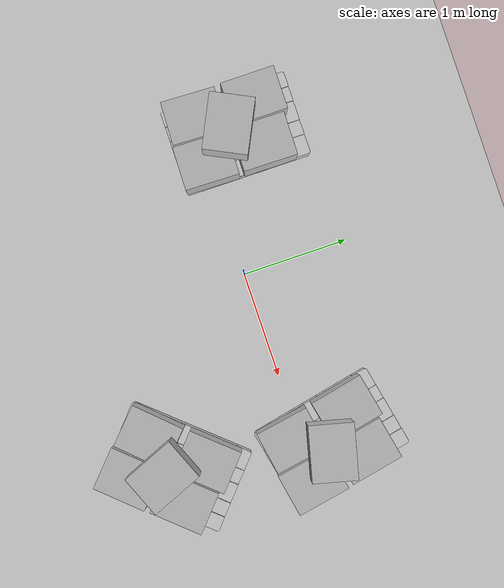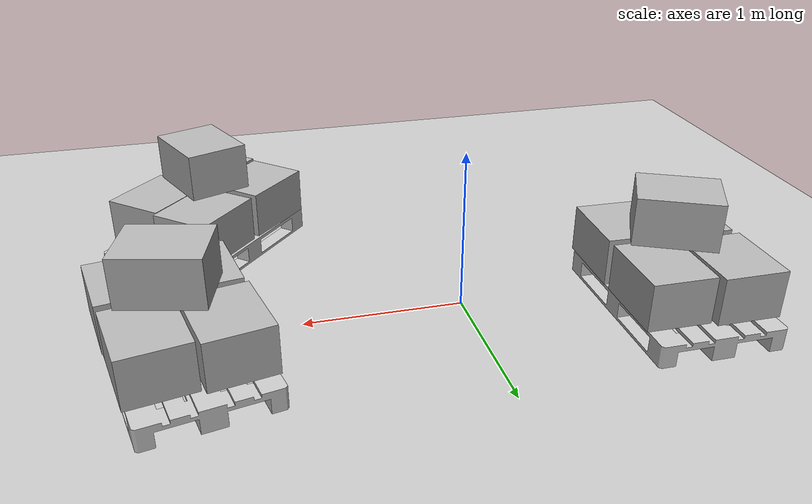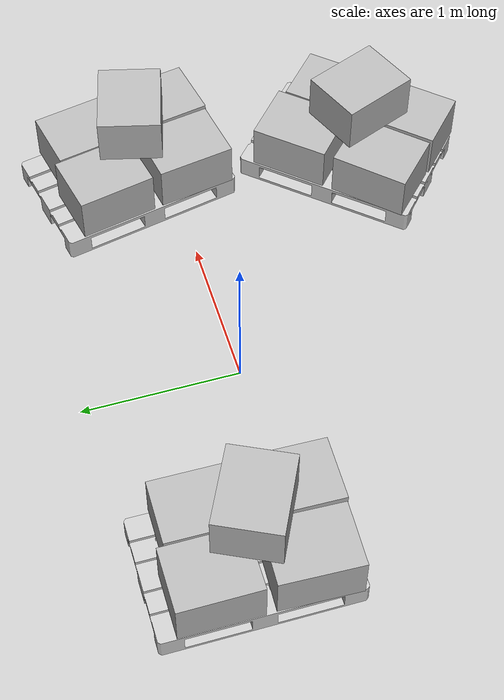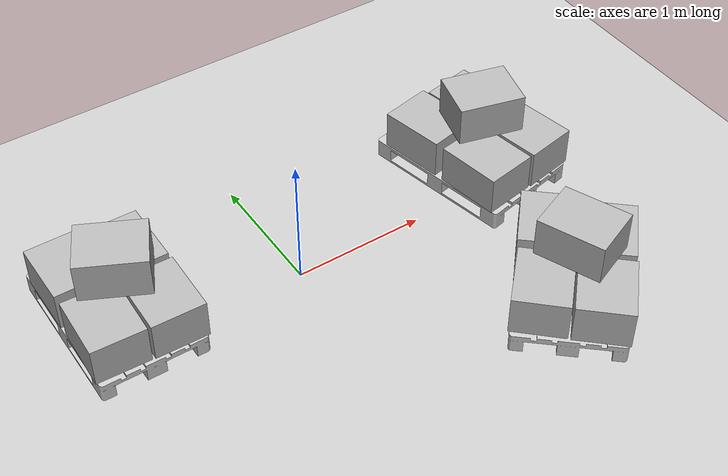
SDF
<sdf version="1.7">
 <world name="default">
  <light name="sun" type="directional">
   <pose>0 0 10 0 -0 0</pose>
   <diffuse>0.8 0.8 0.8 1</diffuse>
   <specular>0.2 0.2 0.2 1</specular>
   <attenuation>
    <range>1000</range>
    <constant>0.9</constant>
    <linear>0.01</linear>
    <quadratic>0.001</quadratic>
   </attenuation>
   <direction>-0.5 0.1 -0.9</direction>
   <spot><inner_angle>0</inner_angle><outer_angle>0</outer_angle><falloff>0</falloff></spot>
  </light>
  <model name="ground_plane">
   <static>1</static>
   <link name="link">
    <collision name="collision">
     <geometry><plane><normal>0 0 1</normal><size>100 100</size></plane></geometry>
     <surface><friction><ode><mu>100</mu><mu2>50</mu2></ode></friction></surface>
    </collision>
    <visual name="visual">
     <cast_shadows>0</cast_shadows>
     <geometry><plane><normal>0 0 1</normal><size>100 100</size></plane></geometry>
     <material>
      <script><uri>file://media/materials/scripts/gazebo.material</uri><name>Gazebo/Grey</name></script>
     </material>
    </visual>
   </link>
  </model>
  <gravity>0 0 -9.8</gravity>
  <magnetic_field>6e-06 2.3e-05 -4.2e-05</magnetic_field>
  <atmosphere type="adiabatic"/>
  <physics type="ode">
   <max_step_size>0.001</max_step_size>
   <real_time_factor>1</real_time_factor>
   <real_time_update_rate>1000</real_time_update_rate>
  </physics>
  <scene><ambient>0.4 0.4 0.4 1</ambient><background>0.7 0.7 0.7 1</background><shadows>1</shadows></scene>
  <audio><device>default</device></audio>
  <spherical_coordinates>
   <surface_model>EARTH_WGS84</surface_model>
   <latitude_deg>0</latitude_deg>
   <longitude_deg>0</longitude_deg>
   <elevation>0</elevation>
   <heading_deg>0</heading_deg>
  </spherical_coordinates>
  <model name="pallet_boxes">
   <model name="cardboard_box">
    <pose>-0.341081 -0.057246 -0.01872 0 -0 0.780735</pose>
    <link name="link">
     <inertial>
      <mass>2</mass>
      <inertia>
       <ixx>0.0416667</ixx>
       <ixy>0</ixy>
       <ixz>0</ixz>
       <iyy>0.0566667</iyy>
       <iyz>0</iyz>
       <izz>0.0683333</izz>
      </inertia>
     </inertial>
     <collision name="collision">
      <geometry><box><size>0.5 0.4 0.3</size></box></geometry>
      <surface>
       <friction><ode><mu>1</mu><mu2>1</mu2></ode></friction>
       <contact><ode><kp>1e+07</kp><kd>1</kd><min_depth>0.001</min_depth><max_vel>0.1</max_vel></ode></contact>
      </surface>
     </collision>
     <visual name="visual">
      <pose>0 0 -0.15 0 -0 0</pose>
      <geometry>
       <mesh><uri>model://cardboard_box/meshes/cardboard_box.dae</uri><scale>1.25932 1.00745 0.755591</scale></mesh>
      </geometry>
     </visual>
    </link>
   </model>
   <model name="cardboard_box_0">
    <pose>-0.055004 -0.357232 -0.01132 0 -0 0.796319</pose>
    <link name="link">
     <inertial>
      <mass>2</mass>
      <inertia>
       <ixx>0.0416667</ixx>
       <ixy>0</ixy>
       <ixz>0</ixz>
       <iyy>0.0566667</iyy>
       <iyz>0</iyz>
       <izz>0.0683333</izz>
      </inertia>
     </inertial>
     <collision name="collision">
      <geometry><box><size>0.5 0.4 0.3</size></box></geometry>
      <surface>
       <friction><ode><mu>1</mu><mu2>1</mu2></ode></friction>
       <contact><ode><kp>1e+07</kp><kd>1</kd><min_depth>0.001</min_depth><max_vel>0.1</max_vel></ode></contact>
      </surface>
     </collision>
     <visual name="visual">
      <pose>0 0 -0.15 0 -0 0</pose>
      <geometry>
       <mesh><uri>model://cardboard_box/meshes/cardboard_box.dae</uri><scale>1.25932 1.00745 0.755591</scale></mesh>
      </geometry>
     </visual>
    </link>
   </model>
   <model name="cardboard_box_1">
    <pose>0.001117 -0.020552 0.305228 0 0 -1.2094</pose>
    <link name="link">
     <inertial>
      <mass>2</mass>
      <inertia>
       <ixx>0.0416667</ixx>
       <ixy>0</ixy>
       <ixz>0</ixz>
       <iyy>0.0566667</iyy>
       <iyz>0</iyz>
       <izz>0.0683333</izz>
      </inertia>
     </inertial>
     <collision name="collision">
      <geometry><box><size>0.5 0.4 0.3</size></box></geometry>
      <surface>
       <friction><ode><mu>1</mu><mu2>1</mu2></ode></friction>
       <contact><ode><kp>1e+07</kp><kd>1</kd><min_depth>0.001</min_depth><max_vel>0.1</max_vel></ode></contact>
      </surface>
     </collision>
     <visual name="visual">
      <pose>0 0 -0.15 0 -0 0</pose>
      <geometry>
       <mesh><uri>model://cardboard_box/meshes/cardboard_box.dae</uri><scale>1.25932 1.00745 0.755591</scale></mesh>
      </geometry>
     </visual>
    </link>
   </model>
   <model name="cardboard_box_2">
    <pose>0.048438 0.355981 -0.009967 0 -0 0.817843</pose>
    <link name="link">
     <inertial>
      <mass>2</mass>
      <inertia>
       <ixx>0.0416667</ixx>
       <ixy>0</ixy>
       <ixz>0</ixz>
       <iyy>0.0566667</iyy>
       <iyz>0</iyz>
       <izz>0.0683333</izz>
      </inertia>
     </inertial>
     <collision name="collision">
      <geometry><box><size>0.5 0.4 0.3</size></box></geometry>
      <surface>
       <friction><ode><mu>1</mu><mu2>1</mu2></ode></friction>
       <contact><ode><kp>1e+07</kp><kd>1</kd><min_depth>0.001</min_depth><max_vel>0.1</max_vel></ode></contact>
      </surface>
     </collision>
     <visual name="visual">
      <pose>0 0 -0.15 0 -0 0</pose>
      <geometry>
       <mesh><uri>model://cardboard_box/meshes/cardboard_box.dae</uri><scale>1.25932 1.00745 0.755591</scale></mesh>
      </geometry>
     </visual>
    </link>
   </model>
   <model name="cardboard_box_3">
    <pose>0.320107 0.039904 -0.015884 0 -0 0.808908</pose>
    <link name="link">
     <inertial>
      <mass>2</mass>
      <inertia>
       <ixx>0.0416667</ixx>
       <ixy>0</ixy>
       <ixz>0</ixz>
       <iyy>0.0566667</iyy>
       <iyz>0</iyz>
       <izz>0.0683333</izz>
      </inertia>
     </inertial>
     <collision name="collision">
      <geometry><box><size>0.5 0.4 0.3</size></box></geometry>
      <surface>
       <friction><ode><mu>1</mu><mu2>1</mu2></ode></friction>
       <contact><ode><kp>1e+07</kp><kd>1</kd><min_depth>0.001</min_depth><max_vel>0.1</max_vel></ode></contact>
      </surface>
     </collision>
     <visual name="visual">
      <pose>0 0 -0.15 0 -0 0</pose>
      <geometry>
       <mesh><uri>model://cardboard_box/meshes/cardboard_box.dae</uri><scale>1.25932 1.00745 0.755591</scale></mesh>
      </geometry>
     </visual>
    </link>
   </model>
   <model name="euro_pallet">
    <link name="link">
     <inertial>
      <mass>20</mass>
      <inertia><ixx>2.43</ixx><ixy>0</ixy><ixz>0</ixz><iyy>1.1</iyy><iyz>0</iyz><izz>3.47</izz></inertia>
     </inertial>
     <collision name="collision">
      <pose>0 0 0.05 0 -0 0</pose>
      <geometry><mesh><uri>model://euro_pallet/meshes/pallet.dae</uri><scale>0.1 0.1 0.1</scale></mesh></geometry>
     </collision>
     <visual name="visual">
      <pose>0 0 0.05 0 -0 0</pose>
      <geometry><mesh><uri>model://euro_pallet/meshes/pallet.dae</uri><scale>0.1 0.1 0.1</scale></mesh></geometry>
     </visual>
    </link>
    <pose>0.026431 0.039136 -0.249336 0 0 -0.754659</pose>
   </model>
   <static>0</static>
   <pose>1.45945 -1.21502 0.312718 7e-06 5e-06 0.028383</pose>
  </model>
  <model name="pallet_boxes_0">
   <model name="cardboard_box">
    <pose>-0.341081 -0.057246 -0.01872 0 -0 0.780735</pose>
    <link name="link">
     <inertial>
      <mass>2</mass>
      <inertia>
       <ixx>0.0416667</ixx>
       <ixy>0</ixy>
       <ixz>0</ixz>
       <iyy>0.0566667</iyy>
       <iyz>0</iyz>
       <izz>0.0683333</izz>
      </inertia>
     </inertial>
     <collision name="collision">
      <geometry><box><size>0.5 0.4 0.3</size></box></geometry>
      <surface>
       <friction><ode><mu>1</mu><mu2>1</mu2></ode></friction>
       <contact><ode><kp>1e+07</kp><kd>1</kd><min_depth>0.001</min_depth><max_vel>0.1</max_vel></ode></contact>
      </surface>
     </collision>
     <visual name="visual">
      <pose>0 0 -0.15 0 -0 0</pose>
      <geometry>
       <mesh><uri>model://cardboard_box/meshes/cardboard_box.dae</uri><scale>1.25932 1.00745 0.755591</scale></mesh>
      </geometry>
     </visual>
    </link>
   </model>
   <model name="cardboard_box_0">
    <pose>-0.055004 -0.357232 -0.01132 0 -0 0.796319</pose>
    <link name="link">
     <inertial>
      <mass>2</mass>
      <inertia>
       <ixx>0.0416667</ixx>
       <ixy>0</ixy>
       <ixz>0</ixz>
       <iyy>0.0566667</iyy>
       <iyz>0</iyz>
       <izz>0.0683333</izz>
      </inertia>
     </inertial>
     <collision name="collision">
      <geometry><box><size>0.5 0.4 0.3</size></box></geometry>
      <surface>
       <friction><ode><mu>1</mu><mu2>1</mu2></ode></friction>
       <contact><ode><kp>1e+07</kp><kd>1</kd><min_depth>0.001</min_depth><max_vel>0.1</max_vel></ode></contact>
      </surface>
     </collision>
     <visual name="visual">
      <pose>0 0 -0.15 0 -0 0</pose>
      <geometry>
       <mesh><uri>model://cardboard_box/meshes/cardboard_box.dae</uri><scale>1.25932 1.00745 0.755591</scale></mesh>
      </geometry>
     </visual>
    </link>
   </model>
   <model name="cardboard_box_1">
    <pose>0.001117 -0.020552 0.305228 0 0 -1.2094</pose>
    <link name="link">
     <inertial>
      <mass>2</mass>
      <inertia>
       <ixx>0.0416667</ixx>
       <ixy>0</ixy>
       <ixz>0</ixz>
       <iyy>0.0566667</iyy>
       <iyz>0</iyz>
       <izz>0.0683333</izz>
      </inertia>
     </inertial>
     <collision name="collision">
      <geometry><box><size>0.5 0.4 0.3</size></box></geometry>
      <surface>
       <friction><ode><mu>1</mu><mu2>1</mu2></ode></friction>
       <contact><ode><kp>1e+07</kp><kd>1</kd><min_depth>0.001</min_depth><max_vel>0.1</max_vel></ode></contact>
      </surface>
     </collision>
     <visual name="visual">
      <pose>0 0 -0.15 0 -0 0</pose>
      <geometry>
       <mesh><uri>model://cardboard_box/meshes/cardboard_box.dae</uri><scale>1.25932 1.00745 0.755591</scale></mesh>
      </geometry>
     </visual>
    </link>
   </model>
   <model name="cardboard_box_2">
    <pose>0.048438 0.355981 -0.009967 0 -0 0.817843</pose>
    <link name="link">
     <inertial>
      <mass>2</mass>
      <inertia>
       <ixx>0.0416667</ixx>
       <ixy>0</ixy>
       <ixz>0</ixz>
       <iyy>0.0566667</iyy>
       <iyz>0</iyz>
       <izz>0.0683333</izz>
      </inertia>
     </inertial>
     <collision name="collision">
      <geometry><box><size>0.5 0.4 0.3</size></box></geometry>
      <surface>
       <friction><ode><mu>1</mu><mu2>1</mu2></ode></friction>
       <contact><ode><kp>1e+07</kp><kd>1</kd><min_depth>0.001</min_depth><max_vel>0.1</max_vel></ode></contact>
      </surface>
     </collision>
     <visual name="visual">
      <pose>0 0 -0.15 0 -0 0</pose>
      <geometry>
       <mesh><uri>model://cardboard_box/meshes/cardboard_box.dae</uri><scale>1.25932 1.00745 0.755591</scale></mesh>
      </geometry>
     </visual>
    </link>
   </model>
   <model name="cardboard_box_3">
    <pose>0.320107 0.039904 -0.015884 0 -0 0.808908</pose>
    <link name="link">
     <inertial>
      <mass>2</mass>
      <inertia>
       <ixx>0.0416667</ixx>
       <ixy>0</ixy>
       <ixz>0</ixz>
       <iyy>0.0566667</iyy>
       <iyz>0</iyz>
       <izz>0.0683333</izz>
      </inertia>
     </inertial>
     <collision name="collision">
      <geometry><box><size>0.5 0.4 0.3</size></box></geometry>
      <surface>
       <friction><ode><mu>1</mu><mu2>1</mu2></ode></friction>
       <contact><ode><kp>1e+07</kp><kd>1</kd><min_depth>0.001</min_depth><max_vel>0.1</max_vel></ode></contact>
      </surface>
     </collision>
     <visual name="visual">
      <pose>0 0 -0.15 0 -0 0</pose>
      <geometry>
       <mesh><uri>model://cardboard_box/meshes/cardboard_box.dae</uri><scale>1.25932 1.00745 0.755591</scale></mesh>
      </geometry>
     </visual>
    </link>
   </model>
   <model name="euro_pallet">
    <link name="link">
     <inertial>
      <mass>20</mass>
      <inertia><ixx>2.43</ixx><ixy>0</ixy><ixz>0</ixz><iyy>1.1</iyy><iyz>0</iyz><izz>3.47</izz></inertia>
     </inertial>
     <collision name="collision">
      <pose>0 0 0.05 0 -0 0</pose>
      <geometry><mesh><uri>model://euro_pallet/meshes/pallet.dae</uri><scale>0.1 0.1 0.1</scale></mesh></geometry>
     </collision>
     <visual name="visual">
      <pose>0 0 0.05 0 -0 0</pose>
      <geometry><mesh><uri>model://euro_pallet/meshes/pallet.dae</uri><scale>0.1 0.1 0.1</scale></mesh></geometry>
     </visual>
    </link>
    <pose>0.026431 0.039136 -0.249336 0 0 -0.754659</pose>
   </model>
   <static>0</static>
   <pose>1.71127 0.233547 0.31272 -3e-06 -2e-06 0.960311</pose>
  </model>
  <model name="pallet_boxes_0_clone">
   <model name="cardboard_box">
    <pose>-0.341081 -0.057246 -0.01872 0 -0 0.780735</pose>
    <link name="link">
     <inertial>
      <mass>2</mass>
      <inertia>
       <ixx>0.0416667</ixx>
       <ixy>0</ixy>
       <ixz>0</ixz>
       <iyy>0.0566667</iyy>
       <iyz>0</iyz>
       <izz>0.0683333</izz>
      </inertia>
     </inertial>
     <collision name="collision">
      <geometry><box><size>0.5 0.4 0.3</size></box></geometry>
      <surface>
       <friction><ode><mu>1</mu><mu2>1</mu2></ode></friction>
       <contact><ode><kp>1e+07</kp><kd>1</kd><min_depth>0.001</min_depth><max_vel>0.1</max_vel></ode></contact>
      </surface>
     </collision>
     <visual name="visual">
      <pose>0 0 -0.15 0 -0 0</pose>
      <geometry>
       <mesh><uri>model://cardboard_box/meshes/cardboard_box.dae</uri><scale>1.25932 1.00745 0.755591</scale></mesh>
      </geometry>
     </visual>
    </link>
   </model>
   <model name="cardboard_box_0">
    <pose>-0.055004 -0.357232 -0.01132 0 -0 0.796319</pose>
    <link name="link">
     <inertial>
      <mass>2</mass>
      <inertia>
       <ixx>0.0416667</ixx>
       <ixy>0</ixy>
       <ixz>0</ixz>
       <iyy>0.0566667</iyy>
       <iyz>0</iyz>
       <izz>0.0683333</izz>
      </inertia>
     </inertial>
     <collision name="collision">
      <geometry><box><size>0.5 0.4 0.3</size></box></geometry>
      <surface>
       <friction><ode><mu>1</mu><mu2>1</mu2></ode></friction>
       <contact><ode><kp>1e+07</kp><kd>1</kd><min_depth>0.001</min_depth><max_vel>0.1</max_vel></ode></contact>
      </surface>
     </collision>
     <visual name="visual">
      <pose>0 0 -0.15 0 -0 0</pose>
      <geometry>
       <mesh><uri>model://cardboard_box/meshes/cardboard_box.dae</uri><scale>1.25932 1.00745 0.755591</scale></mesh>
      </geometry>
     </visual>
    </link>
   </model>
   <model name="cardboard_box_1">
    <pose>0.001117 -0.020552 0.305228 0 0 -1.2094</pose>
    <link name="link">
     <inertial>
      <mass>2</mass>
      <inertia>
       <ixx>0.0416667</ixx>
       <ixy>0</ixy>
       <ixz>0</ixz>
       <iyy>0.0566667</iyy>
       <iyz>0</iyz>
       <izz>0.0683333</izz>
      </inertia>
     </inertial>
     <collision name="collision">
      <geometry><box><size>0.5 0.4 0.3</size></box></geometry>
      <surface>
       <friction><ode><mu>1</mu><mu2>1</mu2></ode></friction>
       <contact><ode><kp>1e+07</kp><kd>1</kd><min_depth>0.001</min_depth><max_vel>0.1</max_vel></ode></contact>
      </surface>
     </collision>
     <visual name="visual">
      <pose>0 0 -0.15 0 -0 0</pose>
      <geometry>
       <mesh><uri>model://cardboard_box/meshes/cardboard_box.dae</uri><scale>1.25932 1.00745 0.755591</scale></mesh>
      </geometry>
     </visual>
    </link>
   </model>
   <model name="cardboard_box_2">
    <pose>0.048438 0.355981 -0.009967 0 -0 0.817843</pose>
    <link name="link">
     <inertial>
      <mass>2</mass>
      <inertia>
       <ixx>0.0416667</ixx>
       <ixy>0</ixy>
       <ixz>0</ixz>
       <iyy>0.0566667</iyy>
       <iyz>0</iyz>
       <izz>0.0683333</izz>
      </inertia>
     </inertial>
     <collision name="collision">
      <geometry><box><size>0.5 0.4 0.3</size></box></geometry>
      <surface>
       <friction><ode><mu>1</mu><mu2>1</mu2></ode></friction>
       <contact><ode><kp>1e+07</kp><kd>1</kd><min_depth>0.001</min_depth><max_vel>0.1</max_vel></ode></contact>
      </surface>
     </collision>
     <visual name="visual">
      <pose>0 0 -0.15 0 -0 0</pose>
      <geometry>
       <mesh><uri>model://cardboard_box/meshes/cardboard_box.dae</uri><scale>1.25932 1.00745 0.755591</scale></mesh>
      </geometry>
     </visual>
    </link>
   </model>
   <model name="cardboard_box_3">
    <pose>0.320107 0.039904 -0.015884 0 -0 0.808908</pose>
    <link name="link">
     <inertial>
      <mass>2</mass>
      <inertia>
       <ixx>0.0416667</ixx>
       <ixy>0</ixy>
       <ixz>0</ixz>
       <iyy>0.0566667</iyy>
       <iyz>0</iyz>
       <izz>0.0683333</izz>
      </inertia>
     </inertial>
     <collision name="collision">
      <geometry><box><size>0.5 0.4 0.3</size></box></geometry>
      <surface>
       <friction><ode><mu>1</mu><mu2>1</mu2></ode></friction>
       <contact><ode><kp>1e+07</kp><kd>1</kd><min_depth>0.001</min_depth><max_vel>0.1</max_vel></ode></contact>
      </surface>
     </collision>
     <visual name="visual">
      <pose>0 0 -0.15 0 -0 0</pose>
      <geometry>
       <mesh><uri>model://cardboard_box/meshes/cardboard_box.dae</uri><scale>1.25932 1.00745 0.755591</scale></mesh>
      </geometry>
     </visual>
    </link>
   </model>
   <model name="euro_pallet">
    <link name="link">
     <inertial>
      <mass>20</mass>
      <inertia><ixx>2.43</ixx><ixy>0</ixy><ixz>0</ixz><iyy>1.1</iyy><iyz>0</iyz><izz>3.47</izz></inertia>
     </inertial>
     <collision name="collision">
      <pose>0 0 0.05 0 -0 0</pose>
      <geometry><mesh><uri>model://euro_pallet/meshes/pallet.dae</uri><scale>0.1 0.1 0.1</scale></mesh></geometry>
     </collision>
     <visual name="visual">
      <pose>0 0 0.05 0 -0 0</pose>
      <geometry><mesh><uri>model://euro_pallet/meshes/pallet.dae</uri><scale>0.1 0.1 0.1</scale></mesh></geometry>
     </visual>
    </link>
    <pose>0.026431 0.039136 -0.249336 0 0 -0.754659</pose>
   </model>
   <static>0</static>
   <pose>-1.25152 0.297376 0.312715 1.8e-05 2.2e-05 0.750401</pose>
  </model>
 </world>
</sdf>
